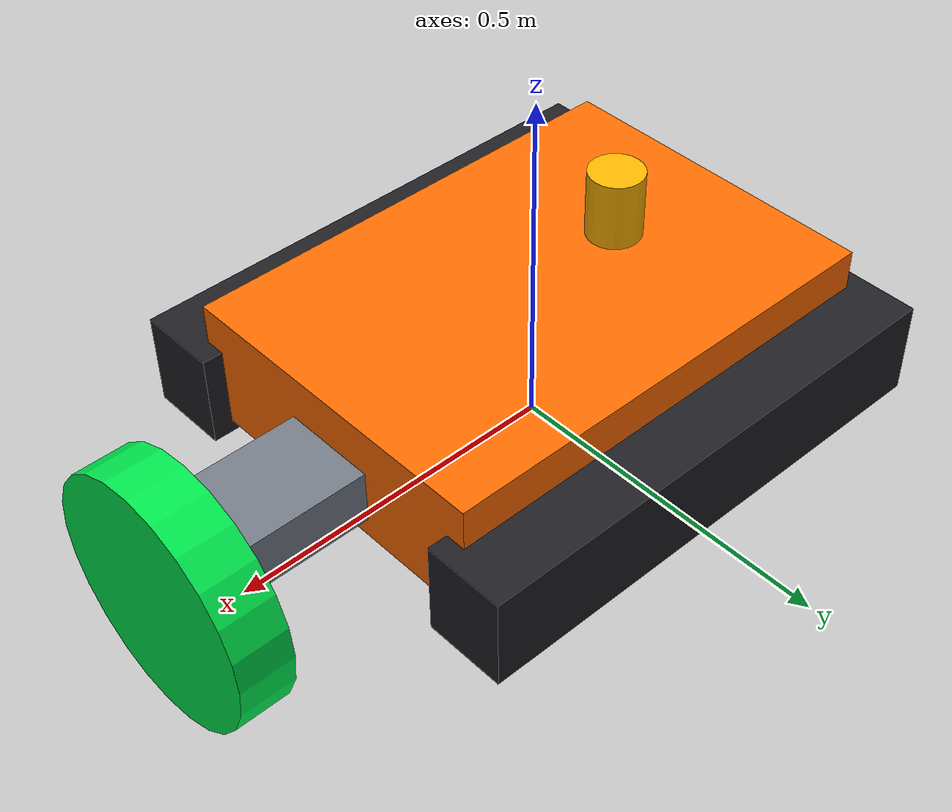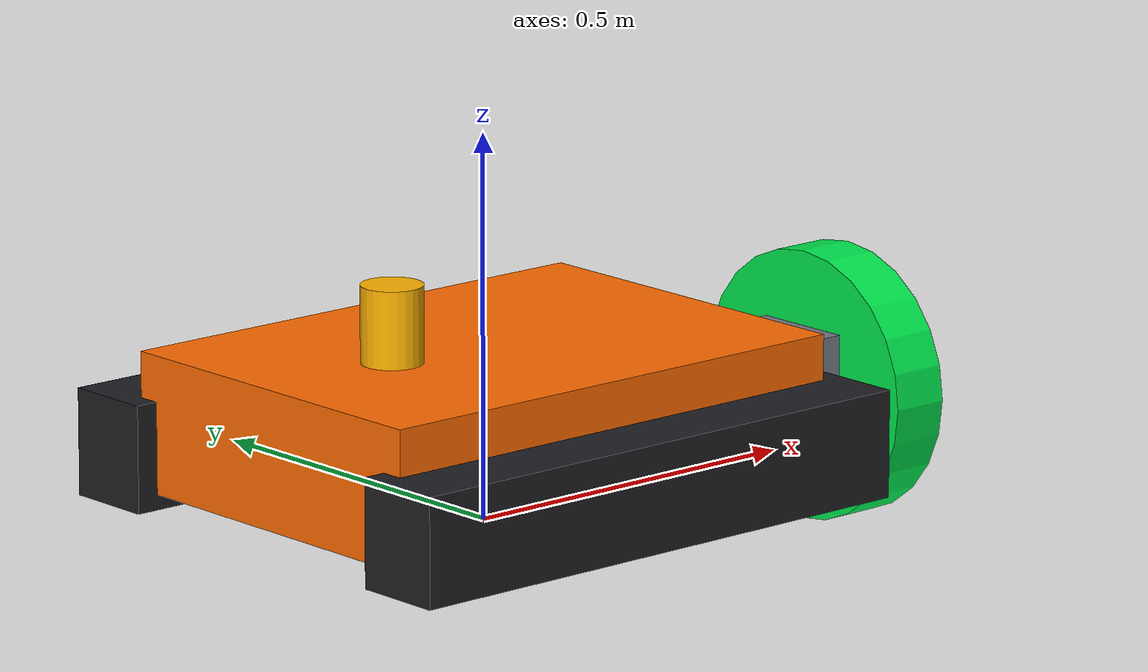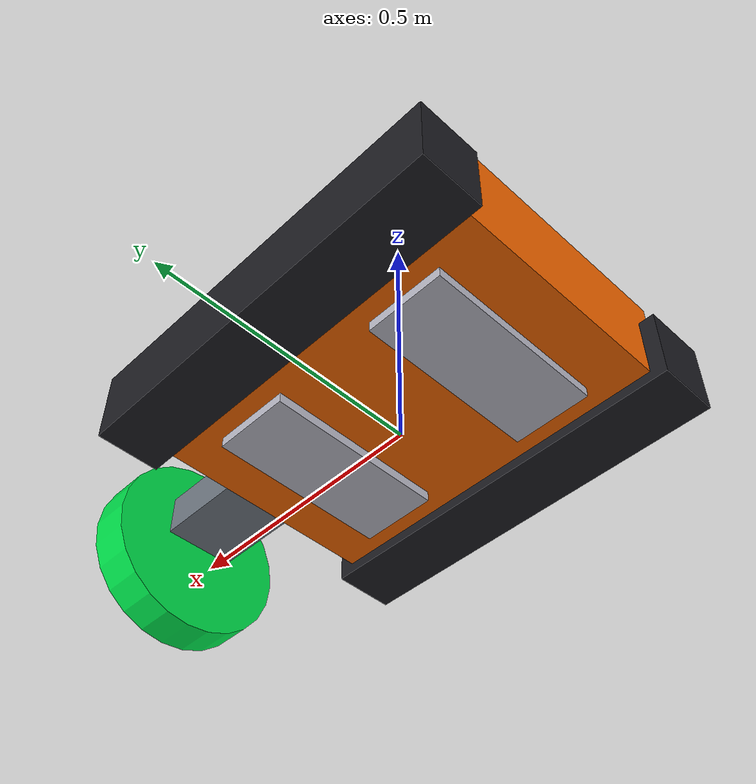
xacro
<?xml version="1.0"?>
<robot xmlns:xacro="http://www.ros.org/wiki/xacro" name="cleaner_robot">

  <xacro:arg name="robot_name" default="cleaner_1"/>
  <xacro:property name="name" value="$(arg robot_name)"/>

  <!-- High-contrast Industrial Materials -->
  <material name="cleaner_body_orange">
    <color rgba="1.0 0.42 0.0 1.0"/>
  </material>
  <material name="crawler_treads_dark">
    <color rgba="0.12 0.12 0.14 1.0"/>
  </material>
  <material name="brush_green">
    <color rgba="0.0 0.9 0.3 1.0"/>
  </material>
  <material name="tool_arm_steel">
    <color rgba="0.45 0.48 0.52 1.0"/>
  </material>
  <material name="beacon_amber">
    <color rgba="1.0 0.7 0.0 1.0"/>
  </material>
  <material name="magnet_silver">
    <color rgba="0.75 0.75 0.8 1.0"/>
  </material>

  <!-- Base footprint on hull surface -->
  <link name="${name}/base_footprint"/>

  <joint name="${name}_base_joint" type="fixed">
    <parent link="${name}/base_footprint"/>
    <child link="${name}/base_link"/>
    <origin xyz="0 0 0.14" rpy="0 0 0"/>
  </joint>

  <!-- Main Heavy Crawler Chassis (>0.7m length) -->
  <link name="${name}/base_link">
    <visual>
      <geometry>
        <box size="0.70 0.50 0.18"/>
      </geometry>
      <material name="cleaner_body_orange"/>
    </visual>
    <collision>
      <geometry>
        <box size="0.70 0.50 0.18"/>
      </geometry>
    </collision>
    <inertial>
      <mass value="22.0"/>
      <inertia ixx="0.4" ixy="0.0" ixz="0.0" iyy="0.7" iyz="0.0" izz="0.9"/>
    </inertial>
  </link>

  <!-- Left Heavy Magnetic Track Unit -->
  <link name="${name}/left_track">
    <visual>
      <geometry>
        <box size="0.76 0.12 0.14"/>
      </geometry>
      <material name="crawler_treads_dark"/>
    </visual>
    <collision>
      <geometry>
        <box size="0.76 0.12 0.14"/>
      </geometry>
    </collision>
    <inertial>
      <mass value="4.0"/>
      <inertia ixx="0.01" ixy="0" ixz="0" iyy="0.1" iyz="0" izz="0.1"/>
    </inertial>
  </link>
  <joint name="${name}_left_track_joint" type="fixed">
    <parent link="${name}/base_link"/>
    <child link="${name}/left_track"/>
    <origin xyz="0 0.28 -0.04" rpy="0 0 0"/>
  </joint>

  <!-- Right Heavy Magnetic Track Unit -->
  <link name="${name}/right_track">
    <visual>
      <geometry>
        <box size="0.76 0.12 0.14"/>
      </geometry>
      <material name="crawler_treads_dark"/>
    </visual>
    <collision>
      <geometry>
        <box size="0.76 0.12 0.14"/>
      </geometry>
    </collision>
    <inertial>
      <mass value="4.0"/>
      <inertia ixx="0.01" ixy="0" ixz="0" iyy="0.1" iyz="0" izz="0.1"/>
    </inertial>
  </link>
  <joint name="${name}_right_track_joint" type="fixed">
    <parent link="${name}/base_link"/>
    <child link="${name}/right_track"/>
    <origin xyz="0 -0.28 -0.04" rpy="0 0 0"/>
  </joint>

  <!-- Hydraulic Tool Arm Boom -->
  <link name="${name}/tool_arm">
    <visual>
      <origin xyz="0.12 0 0" rpy="0 0 0"/>
      <geometry>
        <box size="0.25 0.14 0.08"/>
      </geometry>
      <material name="tool_arm_steel"/>
    </visual>
    <collision>
      <origin xyz="0.12 0 0" rpy="0 0 0"/>
      <geometry>
        <box size="0.25 0.14 0.08"/>
      </geometry>
    </collision>
  </link>
  <joint name="${name}_tool_arm_joint" type="fixed">
    <parent link="${name}/base_link"/>
    <child link="${name}/tool_arm"/>
    <origin xyz="0.35 0 -0.02" rpy="0 0 0"/>
  </joint>

  <!-- Rotary Hydro-Scrubber / Cavitation Brush Head -->
  <link name="${name}/cleaning_tool">
    <visual>
      <geometry>
        <cylinder radius="0.18" length="0.08"/>
      </geometry>
      <material name="brush_green"/>
    </visual>
    <collision>
      <geometry>
        <cylinder radius="0.18" length="0.08"/>
      </geometry>
    </collision>
    <inertial>
      <mass value="2.5"/>
      <inertia ixx="0.02" ixy="0" ixz="0" iyy="0.02" iyz="0" izz="0.04"/>
    </inertial>
  </link>
  <joint name="${name}_cleaning_tool_joint" type="fixed">
    <parent link="${name}/tool_arm"/>
    <child link="${name}/cleaning_tool"/>
    <origin xyz="0.24 0 -0.04" rpy="0 1.5707963 0"/>
  </joint>

  <!-- Top Avionics & Safety Beacon -->
  <link name="${name}/top_beacon">
    <visual>
      <geometry>
        <cylinder radius="0.04" length="0.10"/>
      </geometry>
      <material name="beacon_amber"/>
    </visual>
  </link>
  <joint name="${name}_beacon_joint" type="fixed">
    <parent link="${name}/base_link"/>
    <child link="${name}/top_beacon"/>
    <origin xyz="-0.15 0 0.14" rpy="0 0 0"/>
  </joint>

  <!-- Magnetic Adhesion Pods (Underside visual cues) -->
  <link name="${name}/magnet_pod_front">
    <visual>
      <geometry>
        <box size="0.15 0.35 0.02"/>
      </geometry>
      <material name="magnet_silver"/>
    </visual>
  </link>
  <joint name="${name}_magnet_front_joint" type="fixed">
    <parent link="${name}/base_link"/>
    <child link="${name}/magnet_pod_front"/>
    <origin xyz="0.18 0 -0.10" rpy="0 0 0"/>
  </joint>

  <link name="${name}/magnet_pod_rear">
    <visual>
      <geometry>
        <box size="0.15 0.35 0.02"/>
      </geometry>
      <material name="magnet_silver"/>
    </visual>
  </link>
  <joint name="${name}_magnet_rear_joint" type="fixed">
    <parent link="${name}/base_link"/>
    <child link="${name}/magnet_pod_rear"/>
    <origin xyz="-0.18 0 -0.10" rpy="0 0 0"/>
  </joint>

</robot>
